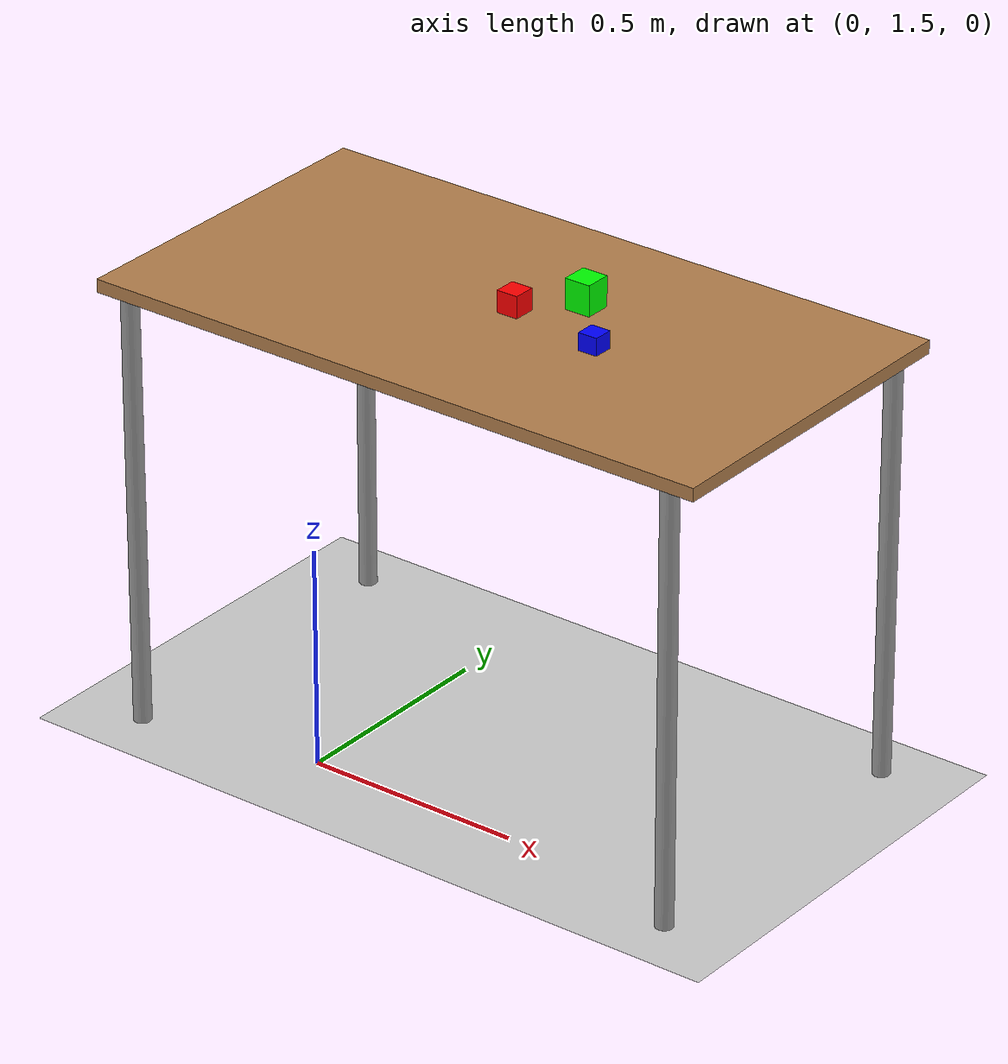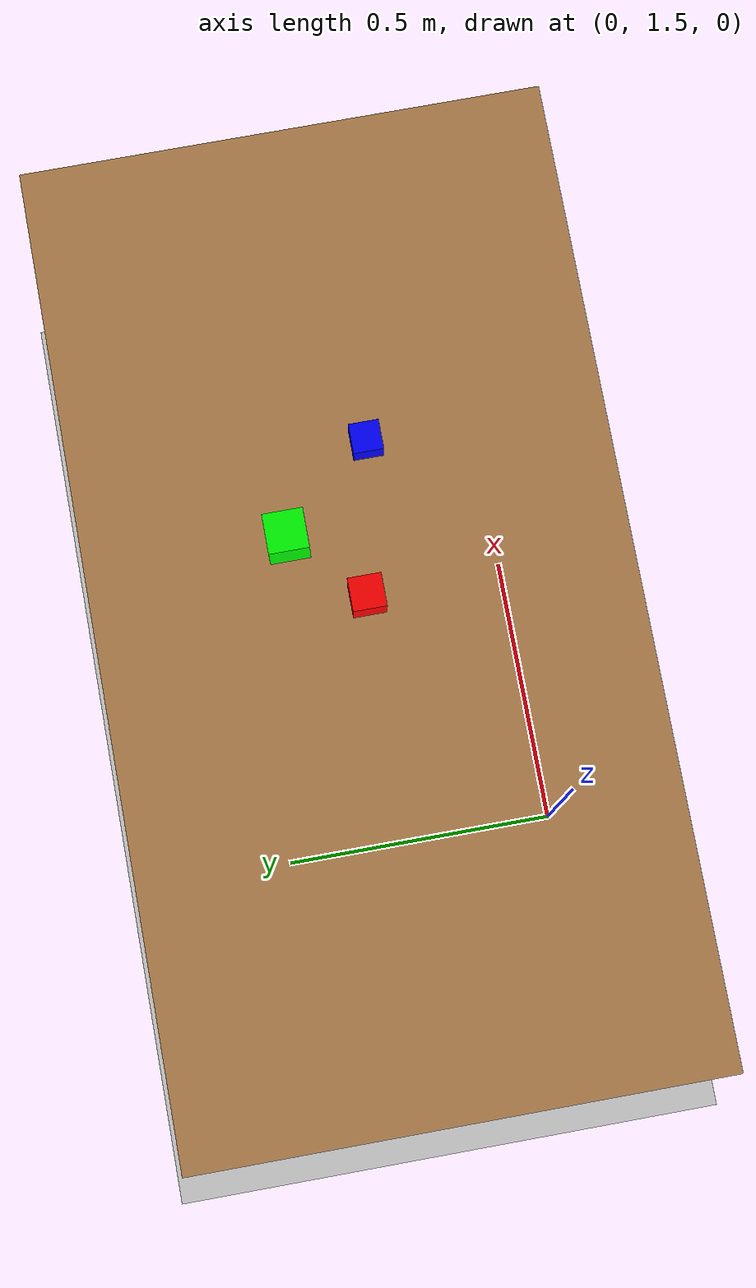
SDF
<?xml version='1.0'?>
<sdf version='1.9'>
  <world name='pick_and_place_cubes_env_2'>
    <physics name='1ms' type='ignored'>
      <max_step_size>0.001</max_step_size>
      <real_time_factor>1.0</real_time_factor>
      <real_time_update_rate>1000</real_time_update_rate>
    </physics>

    <plugin name='gz::sim::systems::Physics' filename='gz-sim-physics-system'/>
    <plugin name='gz::sim::systems::UserCommands' filename='gz-sim-user-commands-system'/>
    <plugin name='gz::sim::systems::Sensors' filename='gz-sim-sensors-system'>
      <render_engine>ogre2</render_engine>
    </plugin>
    <plugin name='gz::sim::systems::SceneBroadcaster' filename='gz-sim-scene-broadcaster-system'/>

    <scene>
      <ambient>0.4 0.4 0.4 1</ambient>
      <background>0.70 0.70 0.72 1</background>
      <shadows>true</shadows>
    </scene>

    <gravity>0 0 -9.8</gravity>

    <include>
      <uri>model://ground_plane</uri>
    </include>

    <include>
      <uri>model://sun</uri>
    </include>

    <include>
      <uri>model://table</uri>
      <pose>0.270759 1.801050 0 0 0 0</pose>
    </include>

    <model name='cube_red'>
      <pose>0.285 1.800 1.040 0 0 0</pose>
      <link name='link'>
        <inertial>
          <mass>0.12</mass>
          <inertia>
            <ixx>0.00005</ixx>
            <ixy>0.0</ixy>
            <ixz>0.0</ixz>
            <iyy>0.00005</iyy>
            <iyz>0.0</iyz>
            <izz>0.00005</izz>
          </inertia>
        </inertial>
        <collision name='collision'>
          <geometry>
            <box>
              <size>0.05 0.05 0.05</size>
            </box>
          </geometry>
        </collision>
        <visual name='visual'>
          <geometry>
            <box>
              <size>0.05 0.05 0.05</size>
            </box>
          </geometry>
          <material>
            <ambient>1 0 0 1</ambient>
            <diffuse>1 0 0 1</diffuse>
            <specular>0.05 0.05 0.05 1</specular>
          </material>
        </visual>
      </link>
    </model>

    <model name='cube_green'>
      <pose>0.390 1.900 1.050 0 0 0</pose>
      <link name='link'>
        <inertial>
          <mass>0.14</mass>
          <inertia>
            <ixx>0.00006</ixx>
            <ixy>0.0</ixy>
            <ixz>0.0</ixz>
            <iyy>0.00006</iyy>
            <iyz>0.0</iyz>
            <izz>0.00006</izz>
          </inertia>
        </inertial>
        <collision name='collision'>
          <geometry>
            <box>
              <size>0.06 0.06 0.07</size>
            </box>
          </geometry>
        </collision>
        <visual name='visual'>
          <geometry>
            <box>
              <size>0.06 0.06 0.07</size>
            </box>
          </geometry>
          <material>
            <ambient>0 1 0 1</ambient>
            <diffuse>0 1 0 1</diffuse>
            <specular>0.05 0.05 0.05 1</specular>
          </material>
        </visual>
      </link>
    </model>

    <model name='cube_blue'>
      <pose>0.515 1.760 1.035 0 0 0</pose>
      <link name='link'>
        <inertial>
          <mass>0.10</mass>
          <inertia>
            <ixx>0.00004</ixx>
            <ixy>0.0</ixy>
            <ixz>0.0</ixz>
            <iyy>0.00004</iyy>
            <iyz>0.0</iyz>
            <izz>0.00004</izz>
          </inertia>
        </inertial>
        <collision name='collision'>
          <geometry>
            <box>
              <size>0.045 0.045 0.04</size>
            </box>
          </geometry>
        </collision>
        <visual name='visual'>
          <geometry>
            <box>
              <size>0.045 0.045 0.04</size>
            </box>
          </geometry>
          <material>
            <ambient>0 0 1 1</ambient>
            <diffuse>0 0 1 1</diffuse>
            <specular>0.05 0.05 0.05 1</specular>
          </material>
        </visual>
      </link>
    </model>
  </world>
</sdf>

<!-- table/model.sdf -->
<sdf version="1.5">
  <model name="table">
    <static>true</static>
    <link name="link">
      <collision name="surface">
        <pose>0 0 1.0 0 0 0</pose>
        <geometry>
          <box>
            <size>1.5 0.8 0.03</size>
          </box>
        </geometry>
        <surface>
          <friction>
            <ode>
              <mu>0.6</mu>
              <mu2>0.6</mu2>
            </ode>
          </friction>
        </surface>
      </collision>
      <visual name="visual1">
        <pose>0 0 1.0 0 0 0</pose>
        <geometry>
          <box>
            <size>1.5 0.8 0.03</size>
          </box>
        </geometry>
        <material>
          <script>
            <uri>model://media/materials/scripts/gazebo.material</uri>
            <name>Gazebo/Wood</name>
          </script>
        </material>
      </visual>
      <collision name="front_left_leg">
        <pose>0.68 0.38 0.5 0 0 0</pose>
        <geometry>
          <cylinder>
            <radius>0.02</radius>
            <length>1.0</length>
          </cylinder>
        </geometry>
      </collision>
      <visual name="front_left_leg">
        <pose>0.68 0.38 0.5 0 0 0</pose>
        <geometry>
          <cylinder>
            <radius>0.02</radius>
            <length>1.0</length>
          </cylinder>
        </geometry>
        <material>
          <script>
            <uri>model://media/materials/scripts/gazebo.material</uri>
            <name>Gazebo/Grey</name>
          </script>
        </material>
      </visual>
      <collision name="front_right_leg">
        <pose>0.68 -0.38 0.5 0 0 0</pose>
        <geometry>
          <cylinder>
            <radius>0.02</radius>
            <length>1.0</length>
          </cylinder>
        </geometry>
      </collision>
      <visual name="front_right_leg">
        <pose>0.68 -0.38 0.5 0 0 0</pose>
        <geometry>
          <cylinder>
            <radius>0.02</radius>
            <length>1.0</length>
          </cylinder>
        </geometry>
        <material>
          <script>
            <uri>model://media/materials/scripts/gazebo.material</uri>
            <name>Gazebo/Grey</name>
          </script>
        </material>
      </visual>
      <collision name="back_right_leg">
        <pose>-0.68 -0.38 0.5 0 0 0</pose>
        <geometry>
          <cylinder>
            <radius>0.02</radius>
            <length>1.0</length>
          </cylinder>
        </geometry>
      </collision>
      <visual name="back_right_leg">
        <pose>-0.68 -0.38 0.5 0 0 0</pose>
        <geometry>
          <cylinder>
            <radius>0.02</radius>
            <length>1.0</length>
          </cylinder>
        </geometry>
        <material>
          <script>
            <uri>model://media/materials/scripts/gazebo.material</uri>
            <name>Gazebo/Grey</name>
          </script>
        </material>
      </visual>
      <collision name="back_left_leg">
        <pose>-0.68 0.38 0.5 0 0 0</pose>
        <geometry>
          <cylinder>
            <radius>0.02</radius>
            <length>1.0</length>
          </cylinder>
        </geometry>
      </collision>
      <visual name="back_left_leg">
        <pose>-0.68 0.38 0.5 0 0 0</pose>
        <geometry>
          <cylinder>
            <radius>0.02</radius>
            <length>1.0</length>
          </cylinder>
        </geometry>
        <material>
          <script>
            <uri>model://media/materials/scripts/gazebo.material</uri>
            <name>Gazebo/Grey</name>
          </script>
        </material>
      </visual>
    </link>
  </model>
</sdf>
